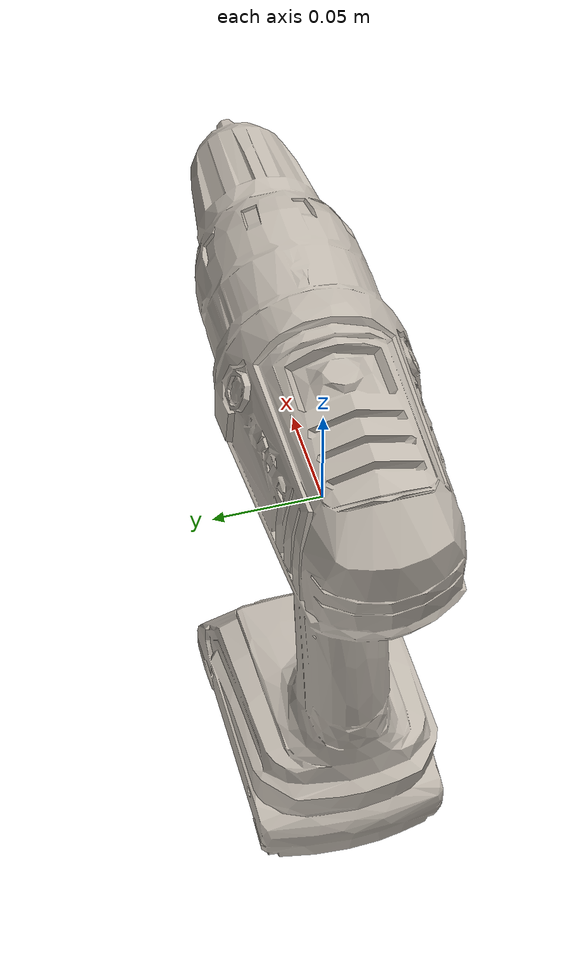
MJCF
<mujoco model="simplified">
  <asset>
    <mesh
      file="robosuite/models/assets/objects/meshes/simplified_zup_1.obj"
      name="simplified"
      scale="0.3 0.3 0.3"
    />
    <texture file="robosuite/models/assets/textures/Material.001.png" type="2d" name="material_001_tex"/>
    <material
      name="Material.001"
      reflectance="0.7"
      texrepeat="1 1"
      texture="material_001_tex"
      texuniform="true"
    />
  </asset>
  <worldbody>
    <body>
      <body name="object">
        <geom
          pos="0 0 0"
          mesh="simplified"
          type="mesh"
          solimp="0.998 0.998 0.001"
          solref="0.001 1"
          density="50"
          friction="0.95 0.3 0.1"
          material="Material.001"
          group="1"
          condim="4"
        />
        <geom
          pos="0 0 0"
          mesh="simplified"
          type="mesh"
          solimp="0.998 0.998 0.001"
          solref="0.001 1"
          density="50"
          friction="0.95 0.3 0.1"
          material="Material.001"
          group="0"
          condim="4"
        />
      </body>
      <site rgba="0 0 0 0" size="0.005" pos="0 0 -0.14945511" name="bottom_site"/>
      <site rgba="0 0 0 0" size="0.005" pos="0 0 0.14945511" name="top_site"/>
      <site rgba="0 0 0 0" size="0.005" pos="0.134244885 0.134244885 0" name="horizontal_radius_site"/>
    </body>
  </worldbody>
</mujoco>
